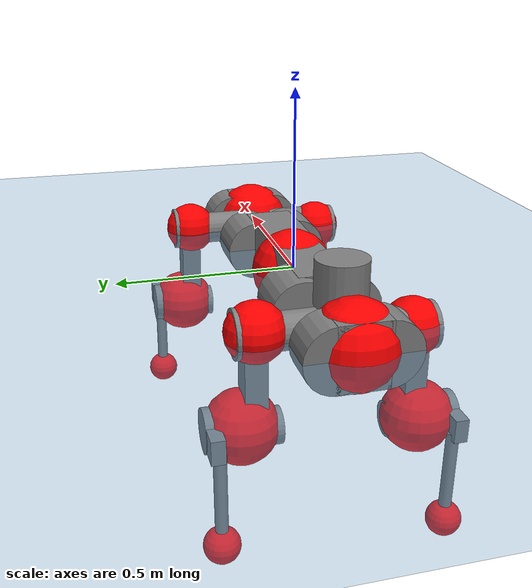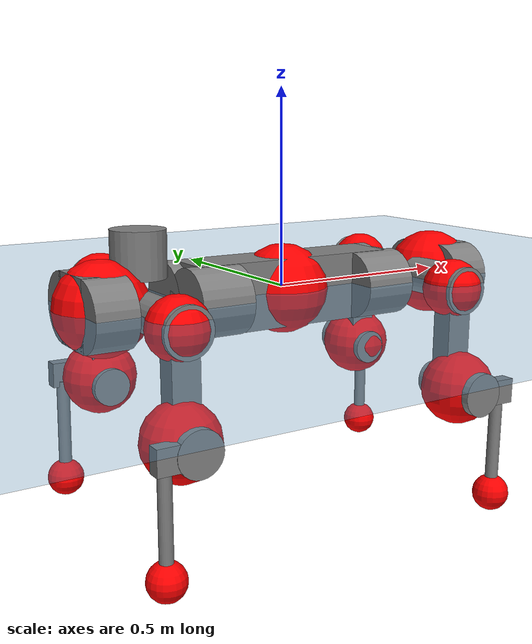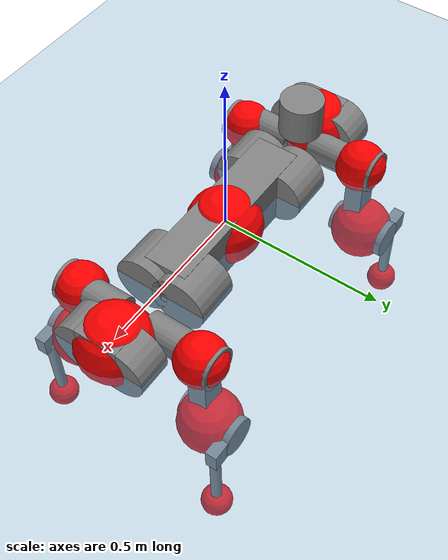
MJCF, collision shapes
<mujoco model="anymal_c">
  <compiler angle="radian" assetdir="assets" balanceinertia="true" inertiafromgeom="false"/>

  <option timestep="0.005" density="1.2" viscosity="2e-05"/>

  <size nkey="1"/>

  <visual>
    <quality shadowsize="8192"/>
    <map shadowclip="0.5"/>
  </visual>

  <default>
    <default class="/">
      <material specular="0" shininess="0.25"/>
      <geom contype="0" conaffinity="0" group="1" solref="-1000 -80"/>
      <site size="0.01 0.005 0.005" group="5"/>
      <general forcelimited="true" forcerange="-80 80" biastype="affine" gainprm="80" biasprm="0 -80 -2"/>
      <default class="anymal_c">
        <joint armature="0.01" damping="0.01" frictionloss="0.1"/>
        <default class="visual">
          <geom type="mesh" group="2"/>
          <default class="visual_zflip"/>
        </default>
        <default class="collision">
          <geom type="cylinder" group="3"/>
          <default class="foot">
            <geom size="0.03 0 0" type="sphere" condim="6" priority="1" friction="0.8 0.02 0.01" solimp="0.015 1 0.03"/>
          </default>
        </default>
      </default>
      <default class="reward_collision_sphere">
        <geom group="5" rgba="1 0 0 1"/>
      </default>
    </default>
  </default>

  <asset>
    <texture type="skybox" colorspace="auto" name="//unnamed_texture_0" builtin="gradient" rgb1="0.95 0.95 0.95" rgb2="0.95 0.95 0.95" width="100" height="600"/>
    <texture type="2d" colorspace="auto" name="texplane" builtin="checker" rgb1="0.345 0.575 0.748" rgb2="0.345 0.575 0.748" markrgb="1 1 1" width="512" height="512"/>
    <texture type="2d" colorspace="linear" name="base" file="base.png"/>
    <texture type="2d" colorspace="linear" name="top_shell" file="top_shell.png"/>
    <texture type="2d" colorspace="linear" name="bottom_shell" file="bottom_shell.png"/>
    <texture type="2d" colorspace="linear" name="remote" file="remote.png"/>
    <texture type="2d" colorspace="linear" name="hatch" file="hatch.png"/>
    <texture type="2d" colorspace="linear" name="handle" file="handle.png"/>
    <texture type="2d" colorspace="linear" name="face" file="face.png"/>
    <texture type="2d" colorspace="linear" name="battery" file="battery.png"/>
    <texture type="2d" colorspace="linear" name="lidar_cage" file="lidar_cage.png"/>
    <texture type="2d" colorspace="linear" name="depth_camera" file="depth_camera.png"/>
    <texture type="2d" colorspace="linear" name="wide_angle_camera" file="wide_angle_camera.png"/>
    <texture type="2d" colorspace="linear" name="lidar" file="lidar.png"/>
    <texture type="2d" colorspace="linear" name="drive" file="drive.png"/>
    <texture type="2d" colorspace="linear" name="hip_l" file="hip_l.png"/>
    <texture type="2d" colorspace="linear" name="shank_l" file="shank_l.png"/>
    <texture type="2d" colorspace="linear" name="foot" file="foot.png"/>
    <texture type="2d" colorspace="linear" name="thigh" file="thigh.png"/>
    <texture type="2d" colorspace="linear" name="shank_r" file="shank_r.png"/>
    <texture type="2d" colorspace="linear" name="hip_r" file="hip_r.png"/>
    <material name="MatPlane" class="/" texture="texplane" texuniform="true" texrepeat="2 2" specular="0.9" shininess="0.5"/>
    <material name="black_plastic" class="/" rgba="0.007 0.007 0.007 1"/>
    <material name="green" class="/" rgba="0.052 0.178 0.033 1"/>
    <material name="red" class="/" rgba="0.178 0.006 0.005 1"/>
    <material name="yellow" class="/" rgba="0.178 0.119 0.006 1"/>
    <material name="lwl" class="/" rgba="0.8 0.8 0.8 1"/>
    <material name="base" class="/" texture="base"/>
    <material name="top_shell" class="/" texture="top_shell"/>
    <material name="bottom_shell" class="/" texture="bottom_shell"/>
    <material name="hip_l" class="/" texture="hip_l"/>
    <material name="thigh" class="/" texture="thigh"/>
    <material name="shank_l" class="/" texture="shank_l"/>
    <material name="foot" class="/" texture="foot"/>
    <material name="hip_r" class="/" texture="hip_r"/>
    <material name="shank" class="/" texture="shank_r"/>
    <material name="hatch" class="/" texture="hatch"/>
    <material name="remote" class="/" texture="remote"/>
    <material name="handle" class="/" texture="handle"/>
    <material name="face" class="/" texture="face"/>
    <material name="depth_camera" class="/" texture="depth_camera"/>
    <material name="wide_angle_camera" class="/" texture="wide_angle_camera"/>
    <material name="battery" class="/" texture="battery"/>
    <material name="lidar_cage" class="/" texture="lidar_cage"/>
    <material name="lidar" class="/" texture="lidar"/>
    <material name="drive" class="/" texture="drive"/>
    <mesh name="base_0" class="/" file="base_0.obj"/>
    <mesh name="base_1" class="/" file="base_1.obj"/>
    <mesh name="base_2" class="/" file="base_2.obj"/>
    <mesh name="base_3" class="/" file="base_3.obj"/>
    <mesh name="base_4" class="/" file="base_4.obj"/>
    <mesh name="base_5" class="/" file="base_5.obj"/>
    <mesh name="top_shell" class="/" file="top_shell.obj"/>
    <mesh name="bottom_shell" class="/" file="bottom_shell.obj"/>
    <mesh name="remote" class="/" file="remote.obj"/>
    <mesh name="handle" class="/" file="handle.obj"/>
    <mesh name="face" class="/" file="face.obj"/>
    <mesh name="wide_angle_camera" class="/" file="wide_angle_camera.obj"/>
    <mesh name="depth_camera" class="/" file="depth_camera.obj"/>
    <mesh name="battery" class="/" file="battery.obj"/>
    <mesh name="lidar_cage" class="/" file="lidar_cage.obj"/>
    <mesh name="lidar" class="/" file="lidar.obj"/>
    <mesh name="drive" class="/" file="drive.obj"/>
    <mesh name="hip_l" class="/" file="hip_l.obj"/>
    <mesh name="thigh" class="/" file="thigh.obj"/>
    <mesh name="shank_l" class="/" file="shank_l.obj"/>
    <mesh name="foot" class="/" file="foot.obj"/>
    <mesh name="hip_r" class="/" file="hip_r.obj"/>
    <mesh name="hatch" class="/" file="hatch.obj"/>
    <mesh name="shank_r" class="/" file="shank_r.obj"/>
  </asset>

  <worldbody>
    <geom name="floor" class="/" size="100 100 0.125" type="plane" group="0" material="MatPlane"/>
    <light name="toplight_shadow" class="/" pos="0 0 5" dir="0.0990148 0.0990148 -0.990148" type="directional" ambient="0.04 0.04 0.04" diffuse="0.55 0.55 0.55" specular="0.12 0.12 0.12"/>
    <light name="toplight_fill" class="/" pos="0 0 5" dir="0.0990148 0.0990148 -0.990148" type="directional" castshadow="false" ambient="0.04 0.04 0.04" diffuse="0.3 0.3 0.3" specular="0.08 0.08 0.08"/>
    <body name="trunk" childclass="anymal_c" pos="0.00532113 0.000634828 -0.00663233" quat="0.999992 0.000753716 0.00252855 0.00294291">
      <inertial pos="0.019279 0.0133774 0.0532826" quat="0.507905 0.512232 0.497986 0.481311" mass="13.4262" diaginertia="1.04658 0.294596 0.12345"/>
      <joint name="//unnamed_joint_0" type="free" armature="0" damping="0" frictionloss="0"/>
      <geom name="//unnamed_geom_1" class="visual" material="green" mesh="base_0"/>
      <geom name="//unnamed_geom_2" class="visual" material="yellow" mesh="base_1"/>
      <geom name="//unnamed_geom_3" class="visual" material="red" mesh="base_2"/>
      <geom name="//unnamed_geom_4" class="visual" material="black_plastic" mesh="base_3"/>
      <geom name="//unnamed_geom_5" class="visual" material="lwl" mesh="base_4"/>
      <geom name="//unnamed_geom_6" class="visual" material="base" mesh="base_5"/>
      <geom name="trunk_1" class="collision" size="0.278399 0.0671998 0.0863997" type="box"/>
      <geom name="trunk_2" class="collision" size="0.0863997 0.0695998" pos="0.241079 0.0604767 0" quat="0.707107 0 0.707107 0"/>
      <geom name="trunk_3" class="collision" size="0.0863997 0.0695998" pos="-0.241079 0.0604767 0" quat="0.707107 0 0.707107 0"/>
      <geom name="trunk_4" class="collision" size="0.0863997 0.0695998" pos="0.241079 -0.0604767 0" quat="0.707107 0 0.707107 0"/>
      <geom name="trunk_5" class="collision" size="0.0863997 0.0695998" pos="-0.241079 -0.0604767 0" quat="0.707107 0 0.707107 0"/>
      <geom name="//unnamed_geom_12" class="visual" material="top_shell" mesh="top_shell"/>
      <geom name="//unnamed_geom_13" class="visual" material="bottom_shell" mesh="bottom_shell"/>
      <geom name="//unnamed_geom_14" class="visual" material="remote" mesh="remote"/>
      <geom name="//unnamed_geom_15" class="visual" material="handle" mesh="handle"/>
      <geom name="//unnamed_geom_16" class="visual" pos="0.459435 0 0" quat="1 0 0 0" material="face" mesh="face"/>
      <geom name="trunk_6" class="collision" size="0.0527998 0.0671998 0.0863997" pos="0.520398 0 0" type="box"/>
      <geom name="//unnamed_geom_18" class="collision" size="0.0863997 0.0527998" pos="0.520398 0.0604767 0" quat="0.707107 0 0.707107 0"/>
      <geom name="//unnamed_geom_19" class="collision" size="0.0863997 0.0527998" pos="0.520398 -0.0604767 0" quat="0.707107 0 0.707107 0"/>
      <geom name="//unnamed_geom_20" class="visual" pos="0.511688 0 -0.0249769" quat="0.965926 0 0.258819 0" material="depth_camera" mesh="depth_camera"/>
      <geom name="//unnamed_geom_21" class="visual" pos="0.568613 0 0.0135872" material="wide_angle_camera" mesh="wide_angle_camera"/>
      <geom name="//unnamed_geom_22" class="visual_zflip" pos="-0.459435 0 0" quat="0 0 0 1" material="face" mesh="face"/>
      <geom name="trunk_7" class="collision" size="0.0527998 0.0671998 0.0863997" pos="-0.520398 0 0" quat="0 0 0 1" type="box"/>
      <geom name="//unnamed_geom_24" class="collision" size="0.0863997 0.0527998" pos="-0.520398 -0.0604767 0" quat="0 -0.707107 0 0.707107"/>
      <geom name="//unnamed_geom_25" class="collision" size="0.0863997 0.0527998" pos="-0.520398 0.0604767 0" quat="0 -0.707107 0 0.707107"/>
      <geom name="//unnamed_geom_26" class="visual" pos="-0.511688 0 -0.0249769" quat="0 -0.258819 0 0.965926" material="depth_camera" mesh="depth_camera"/>
      <geom name="//unnamed_geom_27" class="visual_zflip" pos="-0.568613 0 0.0135872" quat="0 0 0 1" material="wide_angle_camera" mesh="wide_angle_camera"/>
      <geom name="//unnamed_geom_28" class="visual" material="battery" mesh="battery"/>
      <geom name="//unnamed_geom_29" class="visual" pos="0 0.0628417 0.0278926" quat="0.683013 -0.183013 0.183013 0.683013" material="depth_camera" mesh="depth_camera"/>
      <geom name="//unnamed_geom_30" class="visual" pos="0 -0.0628417 0.0278926" quat="0.683013 0.183013 0.183013 -0.683013" material="depth_camera" mesh="depth_camera"/>
      <geom name="//unnamed_geom_31" class="visual" pos="-0.40346 0 0.0667109" quat="1 0 0 0" material="lidar_cage" mesh="lidar_cage"/>
      <geom name="trunk_8" class="collision" size="0.0671998 0.0575998" pos="-0.40346 0 0.121169"/>
      <geom name="//unnamed_geom_33" class="visual" pos="-0.40346 -9.604e-05 0.129065" quat="0.707107 0 0 -0.707107" material="lidar" mesh="lidar"/>
      <geom name="//unnamed_geom_34" class="visual" pos="0.332412 0.0898666 -7.53456e-10" quat="0.258819 0.965926 0 0" material="drive" mesh="drive"/>
      <geom name="//unnamed_geom_35" class="visual" pos="0.332412 -0.0898666 7.53456e-10" quat="0.258819 -0.965926 0 0" material="drive" mesh="drive"/>
      <geom name="//unnamed_geom_36" class="visual" pos="-0.332412 0.0898666 7.53456e-10" quat="0 0 0.965926 -0.258819" material="drive" mesh="drive"/>
      <geom name="//unnamed_geom_37" class="visual" pos="-0.332412 -0.0898666 -7.53456e-10" quat="0 0 -0.965926 -0.258819" material="drive" mesh="drive"/>
      <geom name="//unnamed_geom_38" class="visual" pos="0.128575 0 0.066257" quat="1 0 0 0" material="hatch" mesh="hatch"/>
      <geom name="//unnamed_geom_39" class="reward_collision_sphere" size="0.1152"/>
      <geom name="//unnamed_geom_40" class="reward_collision_sphere" size="0.1152" pos="0.498784 0 0"/>
      <geom name="//unnamed_geom_41" class="reward_collision_sphere" size="0.1152" pos="-0.498784 0 0"/>
      <site name="imu" pos="0.203015 0.0032585 0.114481" size="0.00959997"/>
      <camera name="track" pos="0 -1.7279 0" quat="0.707107 0.707107 0 0" mode="trackcom"/>
      <camera name="ego_camera" pos="0.498784 0 -0.0363052" quat="-0.5 -0.5 0.5 0.5"/>
      <body name="LF_HIP" pos="0.344305 0.102266 0.00837313" quat="0.257579 0.966257 -0.000977039 -0.000107427">
        <inertial pos="0.0620445 -0.00144953 -0.0052485" quat="-0.127245 0.712172 -0.137455 0.676554" mass="2.64469" diaginertia="0.0117636 0.00330176 0.00246857"/>
        <joint name="LF_HAA" pos="0 0 0" axis="0.999983 0.00400879 0.0041662" stiffness="0.0525396" range="-0.734292 0.338602" armature="0.00904904" damping="0" frictionloss="0.146744"/>
        <geom name="//unnamed_geom_42" class="visual" pos="0 -4.43224e-05 7.27992e-06" quat="0.258819 -0.965926 0 0" material="hip_l" mesh="hip_l"/>
        <geom name="//unnamed_geom_43" class="visual" pos="0.0663936 -0.0772469 -0.0449216" quat="0.183013 -0.683013 0.683013 0.183013" material="drive" mesh="drive"/>
        <geom name="//unnamed_geom_44" class="collision" size="0.0479998 0.0671998" pos="0.0663936 -0.0103327 -0.00626719" quat="-0.353553 -0.612372 0.612372 -0.353553"/>
        <body name="LF_THIGH" pos="0.0756803 -0.0780407 -0.0462831" quat="0.186319 -0.682672 0.680892 0.188757">
          <inertial pos="0.0329981 -0.000455024 -0.23207" quat="0.995131 -0.0538222 -0.0516539 0.0644199" mass="3.18166" diaginertia="0.0515307 0.0177429 0.00245505"/>
          <joint name="LF_HFE" pos="0 0 0" axis="0.999686 0.0235389 -0.00854536" stiffness="0.018224" range="-3.41011 2.93081" armature="0.0120407" damping="0" frictionloss="0.140838"/>
          <geom name="//unnamed_geom_45" class="visual" pos="0.0048637 7.66406e-06 0" quat="0.707107 0 0 -0.707107" material="thigh" mesh="thigh"/>
          <geom name="//unnamed_geom_46" class="collision" size="0.0623998 0.0383999" pos="0.0443363 0 0" quat="0.5 0.5 -0.5 -0.5"/>
          <geom name="//unnamed_geom_47" class="collision" size="0.0359999 0.0287999 0.135661" pos="0.0332522 0 -0.128261" quat="0.707107 0 0 -0.707107" type="box"/>
          <geom name="//unnamed_geom_48" class="visual" pos="0.111173 0 -0.258675" quat="1 0 0 0" material="drive" mesh="drive"/>
          <geom name="//unnamed_geom_49" class="collision" size="0.0479998 0.0671998" pos="0.0335848 0 -0.258675" quat="0.707107 0 0.707107 0"/>
          <geom name="//unnamed_geom_50" class="reward_collision_sphere" size="0.0767998" pos="0.0277102 0 0"/>
          <body name="LF_SHANK" pos="0.111318 -0.013865 -0.25802" quat="0.999997 -0.00105673 0.00081208 -0.00205986">
            <inertial pos="0.00613124 -0.0573992 -0.0649399" quat="0.992986 -0.11562 -0.00379366 -0.0244312" mass="0.547528" diaginertia="0.020711 0.00451934 0.000682784"/>
            <joint name="LF_KFE" pos="0 0 0" axis="0.999919 0.00135206 0.0126579" stiffness="0.0657191" range="-3.3479 3.13272" armature="0.00680782" damping="0" frictionloss="0.0940897"/>
            <geom name="//unnamed_geom_51" class="visual" pos="0.00158595 0.00845636 0" quat="0.707107 0 0 -0.707107" material="shank_l" mesh="shank_l"/>
            <geom name="LF_kfe_act" class="collision" size="0.0575998 0.0191999" pos="0.0221682 0 0" quat="0.5 0.5 -0.5 -0.5"/>
            <geom name="//unnamed_geom_53" class="collision" size="0.0551989 0.0323999 0.0182399" pos="0.0221682 -0.0496764 0" quat="0.5 0.5 -0.5 -0.5" type="box"/>
            <geom name="//unnamed_geom_54" class="visual" pos="0.0144643 -0.0732595 -0.306752" quat="0.382683 0 0 -0.92388" material="foot" mesh="foot"/>
            <geom name="LF_calf" class="collision" size="0.0167999 0.135601" pos="0.0144647 -0.0759846 -0.153376" quat="0.707107 0 0 -0.707107"/>
            <geom name="LF_foot" class="foot" size="0.0289743" pos="0.0144647 -0.0759846 -0.28633" quat="0.707107 0 0 -0.707107"/>
            <geom name="//unnamed_geom_57" class="reward_collision_sphere" size="0.0959997" pos="-0.0554204 0 0"/>
            <geom name="//unnamed_geom_58" class="reward_collision_sphere" size="0.0479998" pos="0.0144647 -0.0759846 -0.28633"/>
            <site name="LF_foot" class="foot" pos="0.0144647 -0.0759846 -0.28633" quat="0.707107 0 0 -0.707107" size="0.00959997"/>
          </body>
        </body>
      </body>
      <body name="RF_HIP" pos="0.347309 -0.0928753 0.00463643" quat="0.259009 -0.965875 0.000297723 0.000483765">
        <inertial pos="0.0730284 0.0299716 0.00287884" quat="0.0578475 0.677408 0.125413 0.722526" mass="2.40545" diaginertia="0.0107636 0.00184946 0.00221147"/>
        <joint name="RF_HAA" pos="0 0 0" axis="0.998101 -0.0315842 0.0528822" range="-0.566055 0.704715" armature="0.00882252" damping="0.0603645" frictionloss="0.0627879"/>
        <geom name="//unnamed_geom_59" class="visual" pos="0 4.43221e-05 7.2799e-06" quat="0.258819 0.965926 0 0" material="hip_r" mesh="hip_r"/>
        <geom name="//unnamed_geom_60" class="visual" pos="0.0663936 0.0772469 -0.0449216" quat="0.183013 0.683013 0.683013 -0.183013" material="drive" mesh="drive"/>
        <geom name="//unnamed_geom_61" class="collision" size="0.0479998 0.0671998" pos="0.0663936 0.0103327 -0.00626719" quat="-0.353553 0.612372 0.612372 0.353553"/>
        <body name="RF_THIGH" pos="0.0574571 0.0715787 -0.0251677" quat="0.188059 0.684755 0.680604 -0.180343">
          <inertial pos="0.0195183 0.00603073 -0.213662" quat="0.994247 -0.0356974 -0.0436659 0.0910592" mass="2.42715" diaginertia="0.0600231 0.0175714 0.00221771"/>
          <joint name="RF_HFE" pos="0 0 0" axis="0.999996 9.93936e-05 -0.002971" stiffness="0.00929146" range="-3.27248 3.22672" armature="0.0140454" damping="0.0099864" frictionloss="0.059749"/>
          <geom name="//unnamed_geom_62" class="visual" pos="0.0048637 7.66406e-06 0" quat="0.707107 0 0 -0.707107" material="thigh" mesh="thigh"/>
          <geom name="//unnamed_geom_63" class="collision" size="0.0623998 0.0383999" pos="0.0443363 0 0" quat="0.5 0.5 0.5 0.5"/>
          <geom name="//unnamed_geom_64" class="collision" size="0.0359999 0.0287999 0.135661" pos="0.0332522 0 -0.128261" quat="0.707107 0 0 0.707107" type="box"/>
          <geom name="//unnamed_geom_65" class="visual" pos="0.111173 0 -0.258675" quat="1 0 0 0" material="drive" mesh="drive"/>
          <geom name="//unnamed_geom_66" class="collision" size="0.0479998 0.0671998" pos="0.0335848 0 -0.258675" quat="0.707107 0 0.707107 0"/>
          <geom name="//unnamed_geom_67" class="reward_collision_sphere" size="0.0767998" pos="0.0277102 0 0"/>
          <body name="RF_SHANK" pos="0.120793 0.000443615 -0.261789" quat="0.999989 -0.00461592 -8.04591e-05 -0.000802627">
            <inertial pos="0.0179523 0.0529125 -0.0722858" quat="0.989048 0.111597 -0.0593959 0.0761725" mass="0.389118" diaginertia="0.0130877 0.00415316 0.000587279"/>
            <joint name="RF_KFE" pos="0 0 0" axis="0.999902 0.00116774 0.0139502" stiffness="0.072052" range="-2.84295 3.33447" armature="0.00308746" damping="0" frictionloss="0.0578145"/>
            <geom name="//unnamed_geom_68" class="visual" pos="0.00158594 -0.00845634 0" quat="0.707107 0 0 0.707107" material="shank" mesh="shank_r"/>
            <geom name="RF_kfe_act" class="collision" size="0.0575998 0.0191999" pos="0.0221682 0 0" quat="0.5 0.5 0.5 0.5"/>
            <geom name="//unnamed_geom_70" class="collision" size="0.0551989 0.0323999 0.0182399" pos="0.0221682 0.0496764 0" quat="0.5 0.5 0.5 0.5" type="box"/>
            <geom name="//unnamed_geom_71" class="visual" pos="0.0144651 0.0732595 -0.306752" quat="0.382683 0 0 0.92388" material="foot" mesh="foot"/>
            <geom name="RF_calf" class="collision" size="0.0167999 0.135601" pos="0.0144647 0.0759846 -0.153376" quat="0.707107 0 0 0.707107"/>
            <geom name="RF_foot" class="foot" size="0.0415905" pos="0.0144647 0.0759846 -0.28633" quat="0.707107 0 0 0.707107"/>
            <geom name="//unnamed_geom_74" class="reward_collision_sphere" size="0.0959997" pos="-0.0554204 0 0"/>
            <geom name="//unnamed_geom_75" class="reward_collision_sphere" size="0.0479998" pos="0.0144647 0.0759846 -0.28633"/>
            <site name="RF_foot" class="foot" pos="0.0144647 0.0759846 -0.28633" quat="0.707107 0 0 0.707107" size="0.00959997"/>
          </body>
        </body>
      </body>
      <body name="LH_HIP" pos="-0.346069 0.10079 0.0131627" quat="9.56289e-05 -0.000555555 0.965852 -0.259093">
        <inertial pos="0.0620245 0.00240005 0.00775349" quat="0.0817372 0.704225 0.128625 0.693427" mass="1.98985" diaginertia="0.00629867 0.00204002 0.00183391"/>
        <joint name="LH_HAA" pos="0 0 0" axis="0.998106 -0.0593357 0.0162315" stiffness="0.037882" range="-0.486639 0.586598" armature="0.0102416" damping="0.0776774" frictionloss="0.0939915"/>
        <geom name="//unnamed_geom_76" class="visual" pos="0 4.43221e-05 7.2799e-06" quat="-0.258819 -0.965926 0 0" material="hip_r" mesh="hip_r"/>
        <geom name="//unnamed_geom_77" class="visual" pos="0.0663936 0.0772469 -0.0449216" quat="0.183013 0.683013 0.683013 -0.183013" material="drive" mesh="drive"/>
        <geom name="//unnamed_geom_78" class="collision" size="0.0479998 0.0671998" pos="0.0663936 0.0103327 -0.00626719" quat="-0.353553 0.612372 0.612372 0.353553"/>
        <body name="LH_THIGH" pos="0.0658545 0.0703016 -0.0459391" quat="0.181513 0.6829 0.682681 -0.186137">
          <inertial pos="0.050642 -0.00645855 -0.207701" quat="0.992698 -0.00557377 -0.080702 0.0894844" mass="3.37687" diaginertia="0.0690616 0.0141228 0.0026781"/>
          <joint name="LH_HFE" pos="0 0 0" axis="0.999998 -0.000500905 0.00189853" range="-2.96694 3.34916" armature="0.00744753" damping="0.0660504" frictionloss="0.0921032"/>
          <geom name="//unnamed_geom_79" class="visual" pos="0.0048637 7.66406e-06 0" quat="0.707107 0 0 -0.707107" material="thigh" mesh="thigh"/>
          <geom name="//unnamed_geom_80" class="collision" size="0.0623998 0.0383999" pos="0.0443363 0 0" quat="0.5 0.5 -0.5 -0.5"/>
          <geom name="//unnamed_geom_81" class="collision" size="0.0359999 0.0287999 0.135661" pos="0.0332522 0 -0.128261" quat="0.707107 0 0 -0.707107" type="box"/>
          <geom name="//unnamed_geom_82" class="visual" pos="0.111173 0 -0.258675" quat="1 0 0 0" material="drive" mesh="drive"/>
          <geom name="//unnamed_geom_83" class="collision" size="0.0479998 0.0671998" pos="0.0335848 0 -0.258675" quat="0.707107 0 0.707107 0"/>
          <geom name="//unnamed_geom_84" class="reward_collision_sphere" size="0.0767998" pos="0.0277102 0 0"/>
          <body name="LH_SHANK" pos="0.118443 -0.00702675 -0.252496" quat="1 0.000316444 -0.000633097 -0.000182487">
            <inertial pos="-0.00262929 0.0393014 -0.0669006" quat="0.986626 0.154566 -0.0261363 0.0446734" mass="0.407792" diaginertia="0.0152599 0.00293427 0.000504656"/>
            <joint name="LH_KFE" pos="0 0 0" axis="0.999946 0.00751404 -0.00714686" range="-3.40486 3.35734" armature="0.00259593" damping="0" frictionloss="0.157055"/>
            <geom name="//unnamed_geom_85" class="visual" pos="0.00158594 -0.00845634 0" quat="-0.707107 0 0 -0.707107" material="shank" mesh="shank_r"/>
            <geom name="LH_kfe_act" class="collision" size="0.0575998 0.0191999" pos="0.0221682 0 0" quat="0.5 0.5 -0.5 -0.5"/>
            <geom name="//unnamed_geom_87" class="collision" size="0.0551989 0.0323999 0.0182399" pos="0.0221682 0.0496764 0" quat="0.5 0.5 -0.5 -0.5" type="box"/>
            <geom name="//unnamed_geom_88" class="visual" pos="0.0144651 0.0732595 -0.306752" quat="-0.382683 0 0 -0.92388" material="foot" mesh="foot"/>
            <geom name="LH_calf" class="collision" size="0.0167999 0.135601" pos="0.0144647 0.0759846 -0.153376" quat="0.707107 0 0 -0.707107"/>
            <geom name="LH_foot" class="foot" size="0.0210541" pos="0.0144647 0.0759846 -0.28633" quat="0.707107 0 0 -0.707107"/>
            <geom name="//unnamed_geom_91" class="reward_collision_sphere" size="0.0959997" pos="-0.0554204 0 0"/>
            <geom name="//unnamed_geom_92" class="reward_collision_sphere" size="0.0479998" pos="0.0144647 0.0759846 -0.28633"/>
            <site name="LH_foot" class="foot" pos="0.0144647 0.0759846 -0.28633" quat="0.707107 0 0 -0.707107" size="0.00959997"/>
          </body>
        </body>
      </body>
      <body name="RH_HIP" pos="-0.348939 -0.0914991 -0.00748677" quat="-0.000528153 -0.000649419 -0.965819 -0.259217">
        <inertial pos="0.0724708 -0.0222365 0.00762587" quat="-0.133412 0.759295 -0.0877876 0.630846" mass="2.48664" diaginertia="0.0118836 0.00283228 0.00241129"/>
        <joint name="RH_HAA" pos="0 0 0" axis="0.997442 0.0700545 0.0142197" range="-0.443681 0.311701" armature="0.0133926" damping="0.0539173" frictionloss="0.0938114"/>
        <geom name="//unnamed_geom_93" class="visual" pos="0 -4.43224e-05 7.27992e-06" quat="-0.258819 0.965926 0 0" material="hip_l" mesh="hip_l"/>
        <geom name="//unnamed_geom_94" class="visual" pos="0.0663936 -0.0772469 -0.0449216" quat="-0.183013 0.683013 -0.683013 -0.183013" material="drive" mesh="drive"/>
        <geom name="//unnamed_geom_95" class="collision" size="0.0479998 0.0671998" pos="0.0663936 -0.0103327 -0.00626719" quat="0.353553 0.612372 -0.612372 0.353553"/>
        <body name="RH_THIGH" pos="0.0510036 -0.0693423 -0.024283" quat="-0.188799 0.683816 -0.680415 -0.183808">
          <inertial pos="0.0330806 -0.00953667 -0.228" quat="0.993107 -0.0072238 -0.0828214 0.0826265" mass="3.50554" diaginertia="0.0653676 0.0166691 0.00301855"/>
          <joint name="RH_HFE" pos="0 0 0" axis="0.9998 0.0187033 0.00701583" stiffness="0.0128404" range="-3.33346 3.26149" armature="0.0114882" damping="0" frictionloss="0.0945688"/>
          <geom name="//unnamed_geom_96" class="visual" pos="0.0048637 7.66406e-06 0" quat="0.707107 0 0 -0.707107" material="thigh" mesh="thigh"/>
          <geom name="//unnamed_geom_97" class="collision" size="0.0623998 0.0383999" pos="0.0443363 0 0" quat="0.5 0.5 0.5 0.5"/>
          <geom name="//unnamed_geom_98" class="collision" size="0.0359999 0.0287999 0.135661" pos="0.0332522 0 -0.128261" quat="0.707107 0 0 0.707107" type="box"/>
          <geom name="//unnamed_geom_99" class="visual" pos="0.111173 0 -0.258675" quat="1 0 0 0" material="drive" mesh="drive"/>
          <geom name="//unnamed_geom_100" class="collision" size="0.0479998 0.0671998" pos="0.0335848 0 -0.258675" quat="0.707107 0 0.707107 0"/>
          <geom name="//unnamed_geom_101" class="reward_collision_sphere" size="0.0767998" pos="0.0277102 0 0"/>
          <body name="RH_SHANK" pos="0.106231 -0.0123525 -0.253423" quat="0.999973 0.000460443 0.00719343 -0.00103068">
            <inertial pos="-0.00644221 -0.0450326 -0.078817" quat="0.994465 -0.0992645 0.021547 0.0268656" mass="0.493234" diaginertia="0.0189762 0.00438778 0.000768306"/>
            <joint name="RH_KFE" pos="0 0 0" axis="0.999907 0.0127371 0.00484177" range="-3.10079 2.85901" armature="0.0104243" damping="0" frictionloss="0.0582049"/>
            <geom name="//unnamed_geom_102" class="visual" pos="0.00158595 0.00845636 0" quat="0.707107 0 0 -0.707107" material="shank_l" mesh="shank_l"/>
            <geom name="RH_kfe_act" class="collision" size="0.0575998 0.0191999" pos="0.0221682 0 0" quat="0.5 0.5 0.5 0.5"/>
            <geom name="//unnamed_geom_104" class="collision" size="0.0551989 0.0323999 0.0182399" pos="0.0221682 -0.0496764 0" quat="0.5 0.5 0.5 0.5" type="box"/>
            <geom name="//unnamed_geom_105" class="visual" pos="0.0144643 -0.0732595 -0.306752" quat="0.382683 0 0 -0.92388" material="foot" mesh="foot"/>
            <geom name="RH_calf" class="collision" size="0.0167999 0.135601" pos="0.0144647 -0.0759846 -0.153376" quat="0.707107 0 0 0.707107"/>
            <geom name="RH_foot" class="foot" size="0.0403693" pos="0.0144647 -0.0759846 -0.28633" quat="0.707107 0 0 0.707107"/>
            <geom name="//unnamed_geom_108" class="reward_collision_sphere" size="0.0959997" pos="-0.0554204 0 0"/>
            <geom name="//unnamed_geom_109" class="reward_collision_sphere" size="0.0479998" pos="0.0144647 -0.0759846 -0.28633"/>
            <site name="RH_foot" class="foot" pos="0.0144647 -0.0759846 -0.28633" quat="0.707107 0 0 0.707107" size="0.00959997"/>
          </body>
        </body>
      </body>
    </body>
  </worldbody>

  <contact>
    <pair class="/" geom1="floor" geom2="LF_foot" name="//unnamed_contact_0"/>
    <pair class="/" geom1="floor" geom2="RF_foot" name="//unnamed_contact_1"/>
    <pair class="/" geom1="floor" geom2="LH_foot" name="//unnamed_contact_2"/>
    <pair class="/" geom1="floor" geom2="RH_foot" name="//unnamed_contact_3"/>
  </contact>

  <actuator>
    <general name="LF_HAA" class="/" joint="LF_HAA" forcerange="-111.42 111.42" gainprm="94.8175" biasprm="0 -94.8175 -2.36446"/>
    <general name="LF_HFE" class="/" joint="LF_HFE" forcerange="-120.322 120.322" gainprm="94.8175" biasprm="0 -94.8175 -2.36446"/>
    <general name="LF_KFE" class="/" joint="LF_KFE" forcerange="-95.4652 95.4652" gainprm="94.8175" biasprm="0 -94.8175 -2.36446"/>
    <general name="RF_HAA" class="/" joint="RF_HAA" forcerange="-74.69 74.69" gainprm="94.8175" biasprm="0 -94.8175 -2.36446"/>
    <general name="RF_HFE" class="/" joint="RF_HFE" forcerange="-44.9626 44.9626" gainprm="94.8175" biasprm="0 -94.8175 -2.36446"/>
    <general name="RF_KFE" class="/" joint="RF_KFE" forcerange="-89.3319 89.3319" gainprm="94.8175" biasprm="0 -94.8175 -2.36446"/>
    <general name="LH_HAA" class="/" joint="LH_HAA" forcerange="-77.3287 77.3287" gainprm="94.8175" biasprm="0 -94.8175 -2.36446"/>
    <general name="LH_HFE" class="/" joint="LH_HFE" forcerange="-109.796 109.796" gainprm="94.8175" biasprm="0 -94.8175 -2.36446"/>
    <general name="LH_KFE" class="/" joint="LH_KFE" forcerange="-57.3052 57.3052" gainprm="94.8175" biasprm="0 -94.8175 -2.36446"/>
    <general name="RH_HAA" class="/" joint="RH_HAA" forcerange="-86.3504 86.3504" gainprm="94.8175" biasprm="0 -94.8175 -2.36446"/>
    <general name="RH_HFE" class="/" joint="RH_HFE" forcerange="-38.5885 38.5885" gainprm="94.8175" biasprm="0 -94.8175 -2.36446"/>
    <general name="RH_KFE" class="/" joint="RH_KFE" forcerange="-63.4354 63.4354" gainprm="94.8175" biasprm="0 -94.8175 -2.36446"/>
  </actuator>

  <sensor>
    <gyro site="imu" name="imu_angular_velocity"/>
    <velocimeter site="imu" name="imu_linear_velocity"/>
    <framelinvel objtype="site" objname="LF_foot" name="LF_foot_global_linear_velocity"/>
    <framelinvel objtype="site" objname="RF_foot" name="RF_foot_global_linear_velocity"/>
    <framelinvel objtype="site" objname="LH_foot" name="LH_foot_global_linear_velocity"/>
    <framelinvel objtype="site" objname="RH_foot" name="RH_foot_global_linear_velocity"/>
  </sensor>

  <keyframe>
    <key name="home" qpos="0 0 0.55 1 0 0 0 0 0.4 -0.8 0 -0.4 0.8 0 -0.4 0.8 0 0.4 -0.8"/>
  </keyframe>
</mujoco>
